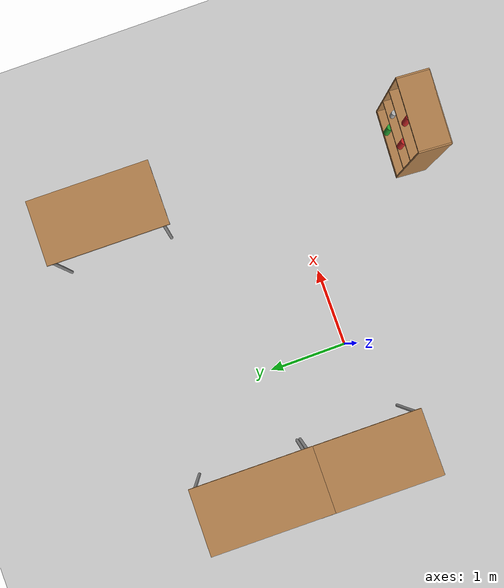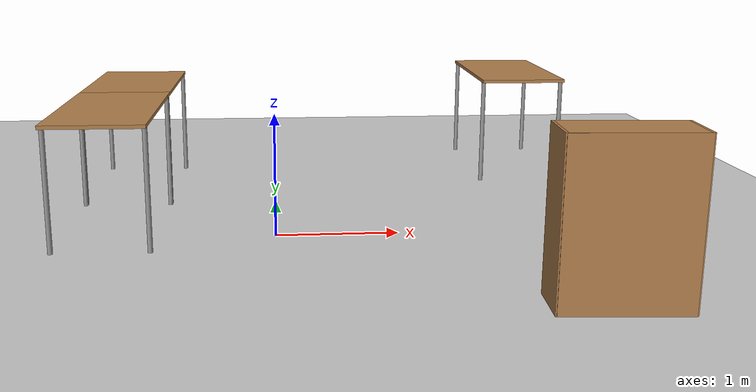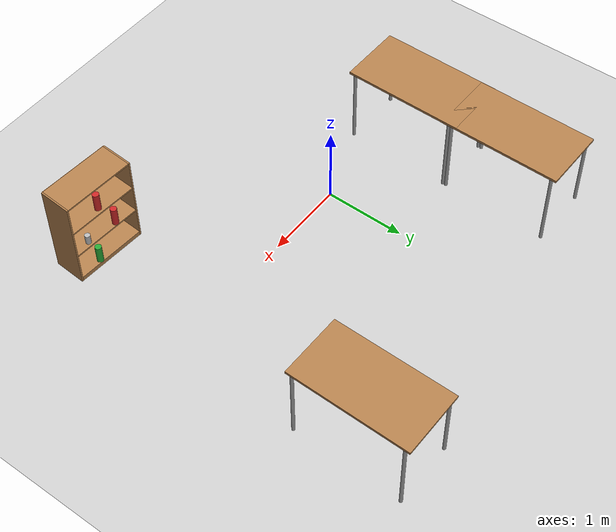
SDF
<sdf version="1.6">
 <world name="default">
  <model name="ground_plane">
   <static>1</static>
   <link name="link">
    <collision name="collision">
     <geometry><plane><normal>0 0 1</normal><size>100 100</size></plane></geometry>
     <surface><friction><ode><mu>100</mu><mu2>50</mu2></ode></friction></surface>
    </collision>
    <visual name="visual">
     <cast_shadows>0</cast_shadows>
     <geometry><plane><normal>0 0 1</normal><size>100 100</size></plane></geometry>
     <material>
      <script><uri>file://media/materials/scripts/gazebo.material</uri><name>Gazebo/Grey</name></script>
     </material>
    </visual>
   </link>
  </model>
  <model name="table">
   <static>1</static>
   <link name="link">
    <collision name="surface">
     <pose>0 0 1 0 -0 0</pose>
     <geometry><box><size>1.5 0.8 0.03</size></box></geometry>
     <surface><friction><ode><mu>0.6</mu><mu2>0.6</mu2></ode></friction></surface>
    </collision>
    <visual name="visual1">
     <pose>0 0 1 0 -0 0</pose>
     <geometry><box><size>1.5 0.8 0.03</size></box></geometry>
     <material>
      <script><uri>file://media/materials/scripts/gazebo.material</uri><name>Gazebo/Wood</name></script>
     </material>
    </visual>
    <collision name="front_left_leg">
     <pose>0.68 0.38 0.5 0 -0 0</pose>
     <geometry><cylinder><radius>0.02</radius><length>1</length></cylinder></geometry>
    </collision>
    <visual name="front_left_leg">
     <pose>0.68 0.38 0.5 0 -0 0</pose>
     <geometry><cylinder><radius>0.02</radius><length>1</length></cylinder></geometry>
     <material>
      <script><uri>file://media/materials/scripts/gazebo.material</uri><name>Gazebo/Grey</name></script>
     </material>
    </visual>
    <collision name="front_right_leg">
     <pose>0.68 -0.38 0.5 0 -0 0</pose>
     <geometry><cylinder><radius>0.02</radius><length>1</length></cylinder></geometry>
    </collision>
    <visual name="front_right_leg">
     <pose>0.68 -0.38 0.5 0 -0 0</pose>
     <geometry><cylinder><radius>0.02</radius><length>1</length></cylinder></geometry>
     <material>
      <script><uri>file://media/materials/scripts/gazebo.material</uri><name>Gazebo/Grey</name></script>
     </material>
    </visual>
    <collision name="back_right_leg">
     <pose>-0.68 -0.38 0.5 0 -0 0</pose>
     <geometry><cylinder><radius>0.02</radius><length>1</length></cylinder></geometry>
    </collision>
    <visual name="back_right_leg">
     <pose>-0.68 -0.38 0.5 0 -0 0</pose>
     <geometry><cylinder><radius>0.02</radius><length>1</length></cylinder></geometry>
     <material>
      <script><uri>file://media/materials/scripts/gazebo.material</uri><name>Gazebo/Grey</name></script>
     </material>
    </visual>
    <collision name="back_left_leg">
     <pose>-0.68 0.38 0.5 0 -0 0</pose>
     <geometry><cylinder><radius>0.02</radius><length>1</length></cylinder></geometry>
    </collision>
    <visual name="back_left_leg">
     <pose>-0.68 0.38 0.5 0 -0 0</pose>
     <geometry><cylinder><radius>0.02</radius><length>1</length></cylinder></geometry>
     <material>
      <script><uri>file://media/materials/scripts/gazebo.material</uri><name>Gazebo/Grey</name></script>
     </material>
    </visual>
   </link>
   <pose>-1.33827 0.322435 0 0 0 -1.58073</pose>
  </model>
  <model name="table_clone">
   <static>1</static>
   <link name="link">
    <collision name="surface">
     <pose>0 0 1 0 -0 0</pose>
     <geometry><box><size>1.5 0.8 0.03</size></box></geometry>
     <surface><friction><ode><mu>0.6</mu><mu2>0.6</mu2></ode></friction></surface>
    </collision>
    <visual name="visual1">
     <pose>0 0 1 0 -0 0</pose>
     <geometry><box><size>1.5 0.8 0.03</size></box></geometry>
     <material>
      <script><uri>file://media/materials/scripts/gazebo.material</uri><name>Gazebo/Wood</name></script>
     </material>
    </visual>
    <collision name="front_left_leg">
     <pose>0.68 0.38 0.5 0 -0 0</pose>
     <geometry><cylinder><radius>0.02</radius><length>1</length></cylinder></geometry>
    </collision>
    <visual name="front_left_leg">
     <pose>0.68 0.38 0.5 0 -0 0</pose>
     <geometry><cylinder><radius>0.02</radius><length>1</length></cylinder></geometry>
     <material>
      <script><uri>file://media/materials/scripts/gazebo.material</uri><name>Gazebo/Grey</name></script>
     </material>
    </visual>
    <collision name="front_right_leg">
     <pose>0.68 -0.38 0.5 0 -0 0</pose>
     <geometry><cylinder><radius>0.02</radius><length>1</length></cylinder></geometry>
    </collision>
    <visual name="front_right_leg">
     <pose>0.68 -0.38 0.5 0 -0 0</pose>
     <geometry><cylinder><radius>0.02</radius><length>1</length></cylinder></geometry>
     <material>
      <script><uri>file://media/materials/scripts/gazebo.material</uri><name>Gazebo/Grey</name></script>
     </material>
    </visual>
    <collision name="back_right_leg">
     <pose>-0.68 -0.38 0.5 0 -0 0</pose>
     <geometry><cylinder><radius>0.02</radius><length>1</length></cylinder></geometry>
    </collision>
    <visual name="back_right_leg">
     <pose>-0.68 -0.38 0.5 0 -0 0</pose>
     <geometry><cylinder><radius>0.02</radius><length>1</length></cylinder></geometry>
     <material>
      <script><uri>file://media/materials/scripts/gazebo.material</uri><name>Gazebo/Grey</name></script>
     </material>
    </visual>
    <collision name="back_left_leg">
     <pose>-0.68 0.38 0.5 0 -0 0</pose>
     <geometry><cylinder><radius>0.02</radius><length>1</length></cylinder></geometry>
    </collision>
    <visual name="back_left_leg">
     <pose>-0.68 0.38 0.5 0 -0 0</pose>
     <geometry><cylinder><radius>0.02</radius><length>1</length></cylinder></geometry>
     <material>
      <script><uri>file://media/materials/scripts/gazebo.material</uri><name>Gazebo/Grey</name></script>
     </material>
    </visual>
   </link>
   <pose>-1.32325 1.64119 0 0 0 -1.58073</pose>
  </model>
  <model name="table_clone_2">
   <static>1</static>
   <link name="link">
    <collision name="surface">
     <pose>0 0 1 0 -0 0</pose>
     <geometry><box><size>1.5 0.8 0.03</size></box></geometry>
     <surface><friction><ode><mu>0.6</mu><mu2>0.6</mu2></ode></friction></surface>
    </collision>
    <visual name="visual1">
     <pose>0 0 1 0 -0 0</pose>
     <geometry><box><size>1.5 0.8 0.03</size></box></geometry>
     <material>
      <script><uri>file://media/materials/scripts/gazebo.material</uri><name>Gazebo/Wood</name></script>
     </material>
    </visual>
    <collision name="front_left_leg">
     <pose>0.68 0.38 0.5 0 -0 0</pose>
     <geometry><cylinder><radius>0.02</radius><length>1</length></cylinder></geometry>
    </collision>
    <visual name="front_left_leg">
     <pose>0.68 0.38 0.5 0 -0 0</pose>
     <geometry><cylinder><radius>0.02</radius><length>1</length></cylinder></geometry>
     <material>
      <script><uri>file://media/materials/scripts/gazebo.material</uri><name>Gazebo/Grey</name></script>
     </material>
    </visual>
    <collision name="front_right_leg">
     <pose>0.68 -0.38 0.5 0 -0 0</pose>
     <geometry><cylinder><radius>0.02</radius><length>1</length></cylinder></geometry>
    </collision>
    <visual name="front_right_leg">
     <pose>0.68 -0.38 0.5 0 -0 0</pose>
     <geometry><cylinder><radius>0.02</radius><length>1</length></cylinder></geometry>
     <material>
      <script><uri>file://media/materials/scripts/gazebo.material</uri><name>Gazebo/Grey</name></script>
     </material>
    </visual>
    <collision name="back_right_leg">
     <pose>-0.68 -0.38 0.5 0 -0 0</pose>
     <geometry><cylinder><radius>0.02</radius><length>1</length></cylinder></geometry>
    </collision>
    <visual name="back_right_leg">
     <pose>-0.68 -0.38 0.5 0 -0 0</pose>
     <geometry><cylinder><radius>0.02</radius><length>1</length></cylinder></geometry>
     <material>
      <script><uri>file://media/materials/scripts/gazebo.material</uri><name>Gazebo/Grey</name></script>
     </material>
    </visual>
    <collision name="back_left_leg">
     <pose>-0.68 0.38 0.5 0 -0 0</pose>
     <geometry><cylinder><radius>0.02</radius><length>1</length></cylinder></geometry>
    </collision>
    <visual name="back_left_leg">
     <pose>-0.68 0.38 0.5 0 -0 0</pose>
     <geometry><cylinder><radius>0.02</radius><length>1</length></cylinder></geometry>
     <material>
      <script><uri>file://media/materials/scripts/gazebo.material</uri><name>Gazebo/Grey</name></script>
     </material>
    </visual>
   </link>
   <pose>2.43494 2.31407 0 0 0 -1.58073</pose>
  </model>
  <model name="bookshelf">
   <static>1</static>
   <link name="link">
    <inertial><mass>1</mass></inertial>
    <collision name="back">
     <pose>0 0.005 0.6 0 -0 0</pose>
     <geometry><box><size>0.9 0.01 1.2</size></box></geometry>
    </collision>
    <visual name="visual1">
     <pose>0 0.005 0.6 0 -0 0</pose>
     <geometry><box><size>0.9 0.01 1.2</size></box></geometry>
     <material>
      <script><uri>file://media/materials/scripts/gazebo.material</uri><name>Gazebo/Wood</name></script>
     </material>
    </visual>
    <collision name="left_side">
     <pose>0.45 -0.195 0.6 0 -0 0</pose>
     <geometry><box><size>0.02 0.4 1.2</size></box></geometry>
    </collision>
    <visual name="visual2">
     <pose>0.45 -0.195 0.6 0 -0 0</pose>
     <geometry><box><size>0.02 0.4 1.2</size></box></geometry>
     <material>
      <script><uri>file://media/materials/scripts/gazebo.material</uri><name>Gazebo/Wood</name></script>
     </material>
    </visual>
    <collision name="right_side">
     <pose>-0.45 -0.195 0.6 0 -0 0</pose>
     <geometry><box><size>0.02 0.4 1.2</size></box></geometry>
    </collision>
    <visual name="visual3">
     <pose>-0.45 -0.195 0.6 0 -0 0</pose>
     <geometry><box><size>0.02 0.4 1.2</size></box></geometry>
     <material>
      <script><uri>file://media/materials/scripts/gazebo.material</uri><name>Gazebo/Wood</name></script>
     </material>
    </visual>
    <collision name="bottom">
     <pose>0 -0.195 0.03 0 -0 0</pose>
     <geometry><box><size>0.88 0.4 0.06</size></box></geometry>
    </collision>
    <visual name="visual4">
     <pose>0 -0.195 0.03 0 -0 0</pose>
     <geometry><box><size>0.88 0.4 0.06</size></box></geometry>
     <material>
      <script><uri>file://media/materials/scripts/gazebo.material</uri><name>Gazebo/Wood</name></script>
     </material>
    </visual>
    <collision name="top">
     <pose>0 -0.195 1.19 0 -0 0</pose>
     <geometry><box><size>0.88 0.4 0.02</size></box></geometry>
    </collision>
    <visual name="visual5">
     <pose>0 -0.195 1.19 0 -0 0</pose>
     <geometry><box><size>0.88 0.4 0.02</size></box></geometry>
     <material>
      <script><uri>file://media/materials/scripts/gazebo.material</uri><name>Gazebo/Wood</name></script>
     </material>
    </visual>
    <collision name="low_shelf">
     <pose>0 -0.195 0.43 0 -0 0</pose>
     <geometry><box><size>0.88 0.4 0.02</size></box></geometry>
    </collision>
    <visual name="visual6">
     <pose>0 -0.195 0.43 0 -0 0</pose>
     <geometry><box><size>0.88 0.4 0.02</size></box></geometry>
     <material>
      <script><uri>file://media/materials/scripts/gazebo.material</uri><name>Gazebo/Wood</name></script>
     </material>
    </visual>
    <collision name="high_shelf">
     <pose>0 -0.195 0.8 0 -0 0</pose>
     <geometry><box><size>0.88 0.4 0.02</size></box></geometry>
    </collision>
    <visual name="visual7">
     <pose>0 -0.195 0.8 0 -0 0</pose>
     <geometry><box><size>0.88 0.4 0.02</size></box></geometry>
     <material>
      <script><uri>file://media/materials/scripts/gazebo.material</uri><name>Gazebo/Wood</name></script>
     </material>
    </visual>
   </link>
   <pose>2.23083 -1.80058 0 0 -0 3.07904</pose>
  </model>
  <model name="pringles_red">
   <pose>2.09036 -1.43441 0.556653 4.4e-05 3e-06 0</pose>
   <link name="link">
    <inertial>
     <mass>0.2</mass>
     <inertia>
      <ixx>0.000908</ixx>
      <ixy>0</ixy>
      <ixz>0</ixz>
      <iyy>0.000908</iyy>
      <iyz>0</iyz>
      <izz>0.0002025</izz>
     </inertia>
    </inertial>
    <collision name="collision">
     <geometry><cylinder><radius>0.04</radius><length>0.235</length></cylinder></geometry>
     <surface>
      <contact><ode><min_depth>0.005</min_depth></ode></contact>
      <friction><ode><mu>0.9</mu><mu2>0.9</mu2></ode></friction>
     </surface>
    </collision>
    <visual name="visual">
     <pose>0 0 0 3.1415 -0 0</pose>
     <geometry><cylinder><radius>0.04</radius><length>0.235</length></cylinder></geometry>
     <material>
      <script>
       <uri>model://pringles_red/material/scripts</uri>
       <uri>model://pringles_red/material/textures</uri>
       <name>Custom/PringlesRed</name>
      </script>
     </material>
    </visual>
   </link>
  </model>
  <model name="pringles_green">
   <pose>2.3904 -1.45063 0.172501 3.3e-05 -0 -1.60336</pose>
   <link name="link">
    <inertial>
     <mass>0.2</mass>
     <inertia>
      <ixx>0.000908</ixx>
      <ixy>0</ixy>
      <ixz>0</ixz>
      <iyy>0.000908</iyy>
      <iyz>0</iyz>
      <izz>0.0002025</izz>
     </inertia>
    </inertial>
    <collision name="collision">
     <geometry><cylinder><radius>0.04</radius><length>0.235</length></cylinder></geometry>
     <surface>
      <contact><ode><min_depth>0.005</min_depth></ode></contact>
      <friction><ode><mu>0.9</mu><mu2>0.9</mu2></ode></friction>
     </surface>
    </collision>
    <visual name="visual">
     <geometry><cylinder><radius>0.04</radius><length>0.235</length></cylinder></geometry>
     <material>
      <script>
       <uri>model://pringles_green/material/scripts</uri>
       <uri>model://pringles_green/material/textures</uri>
       <name>Custom/PringlesGreen</name>
      </script>
     </material>
    </visual>
   </link>
  </model>
  <model name="pringles_red_0">
   <pose>2.26414 -1.47511 0.927068 1.4e-05 3.2e-05 -0</pose>
   <link name="link">
    <inertial>
     <mass>0.2</mass>
     <inertia>
      <ixx>0.000908</ixx>
      <ixy>0</ixy>
      <ixz>0</ixz>
      <iyy>0.000908</iyy>
      <iyz>0</iyz>
      <izz>0.0002025</izz>
     </inertia>
    </inertial>
    <collision name="collision">
     <geometry><cylinder><radius>0.04</radius><length>0.235</length></cylinder></geometry>
     <surface>
      <contact><ode><min_depth>0.005</min_depth></ode></contact>
      <friction><ode><mu>0.9</mu><mu2>0.9</mu2></ode></friction>
     </surface>
    </collision>
    <visual name="visual">
     <pose>0 0 0 3.1415 -0 0</pose>
     <geometry><cylinder><radius>0.04</radius><length>0.235</length></cylinder></geometry>
     <material>
      <script>
       <uri>model://pringles_red/material/scripts</uri>
       <uri>model://pringles_red/material/textures</uri>
       <name>Custom/PringlesRed</name>
      </script>
     </material>
    </visual>
   </link>
  </model>
  <model name="cocacola">
   <pose>2.48327 -1.47758 0.500418 0 0 -1.65095</pose>
   <link name="link">
    <inertial>
     <mass>0.39</mass>
     <inertia><ixx>0.00058</ixx><ixy>0</ixy><ixz>0</ixz><iyy>0.00058</iyy><iyz>0</iyz><izz>0.00019</izz></inertia>
    </inertial>
    <collision name="collision">
     <geometry><cylinder><radius>0.03302</radius><length>0.12268</length></cylinder></geometry>
     <surface>
      <contact><ode><min_depth>0.005</min_depth></ode></contact>
      <friction><ode><mu>0.9</mu><mu2>0.9</mu2></ode></friction>
     </surface>
    </collision>
    <visual name="visual">
     <geometry><cylinder><radius>0.03302</radius><length>0.12268</length></cylinder></geometry>
     <material>
      <script>
       <uri>model://cocacola/materials/scripts</uri>
       <uri>model://cocacola/materials/textures</uri>
       <name>CocaCola/Diffuse</name>
      </script>
     </material>
    </visual>
   </link>
  </model>
 </world>
</sdf>
